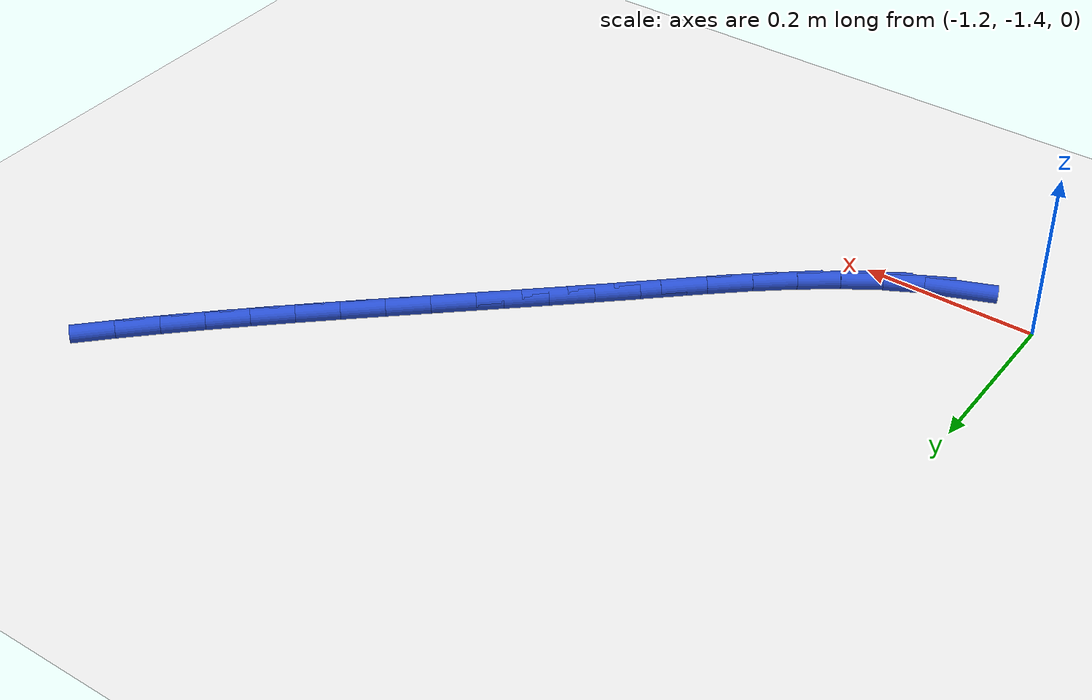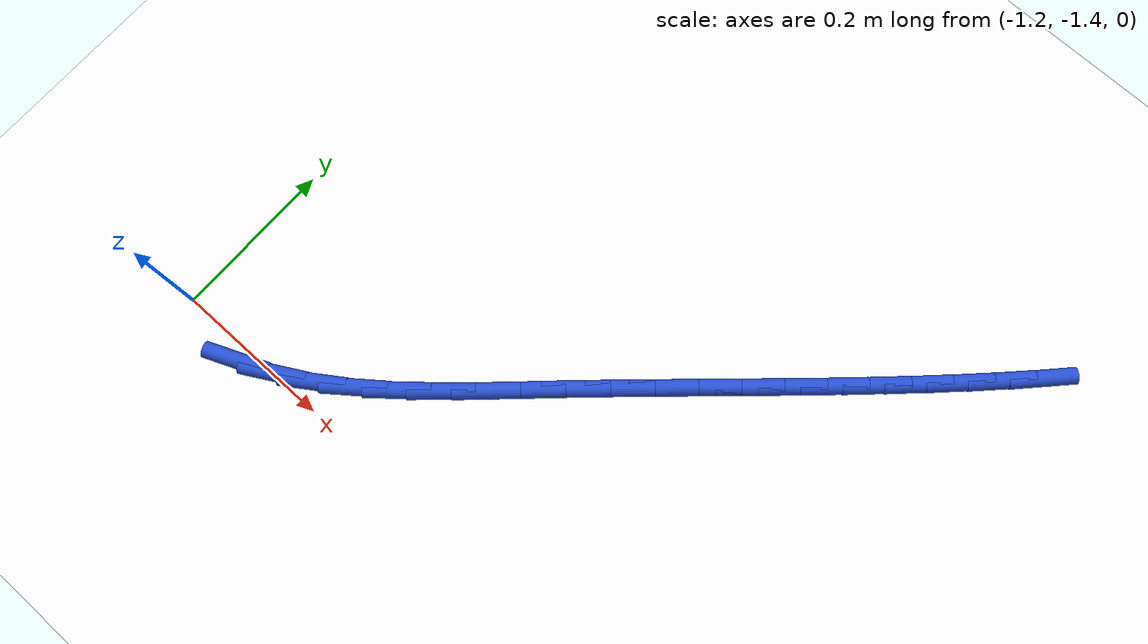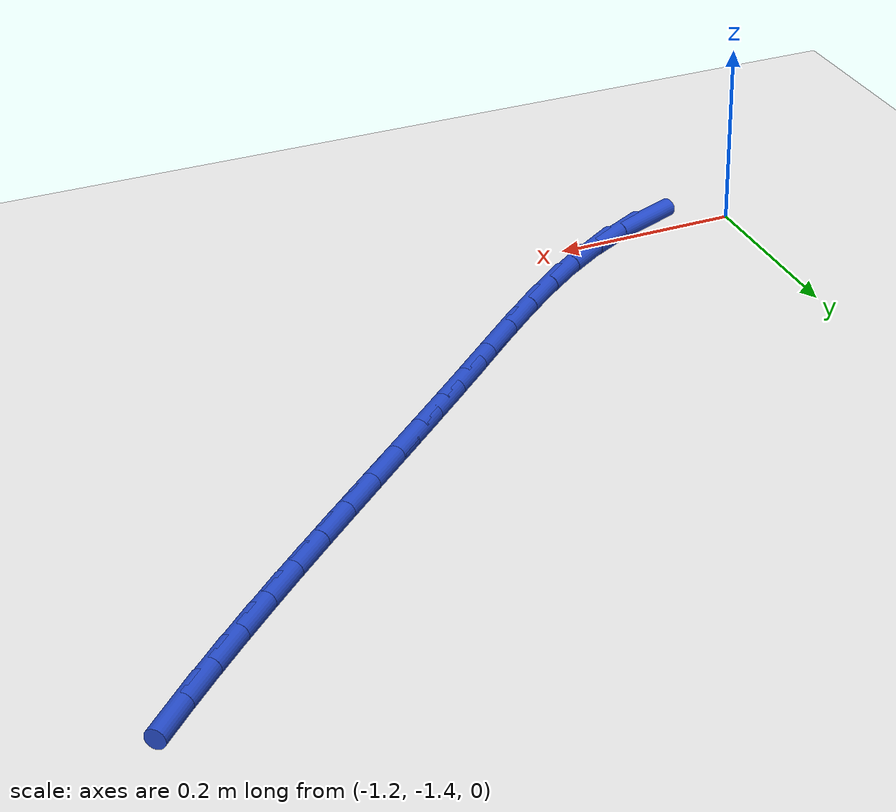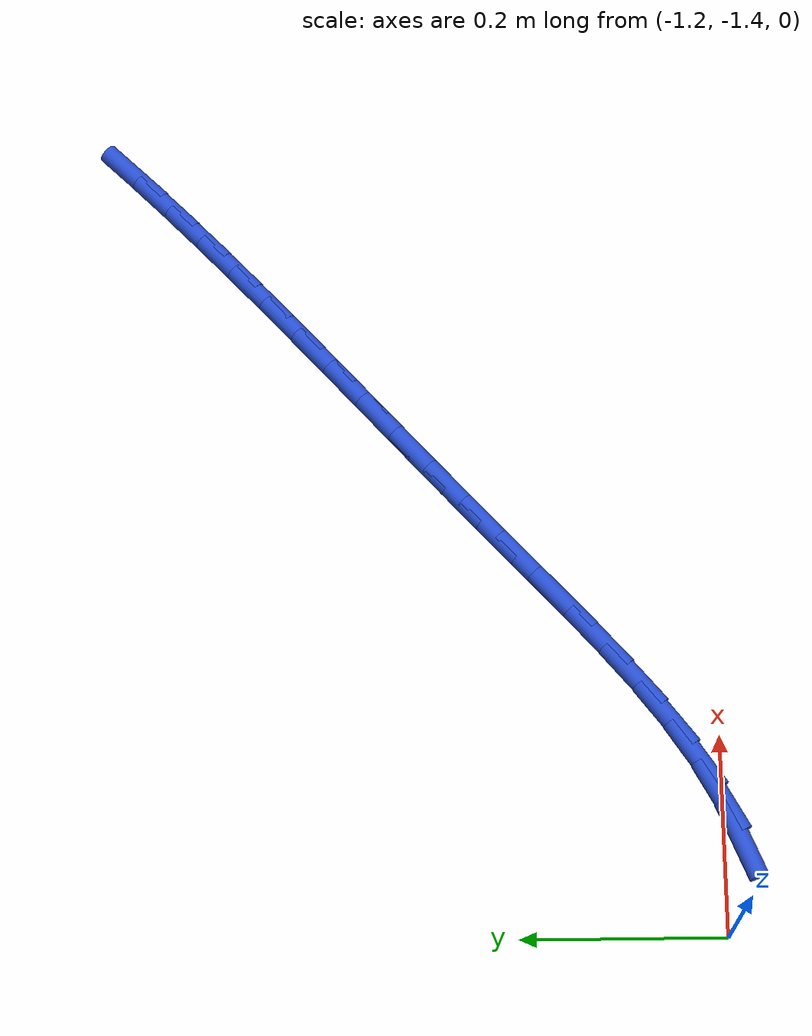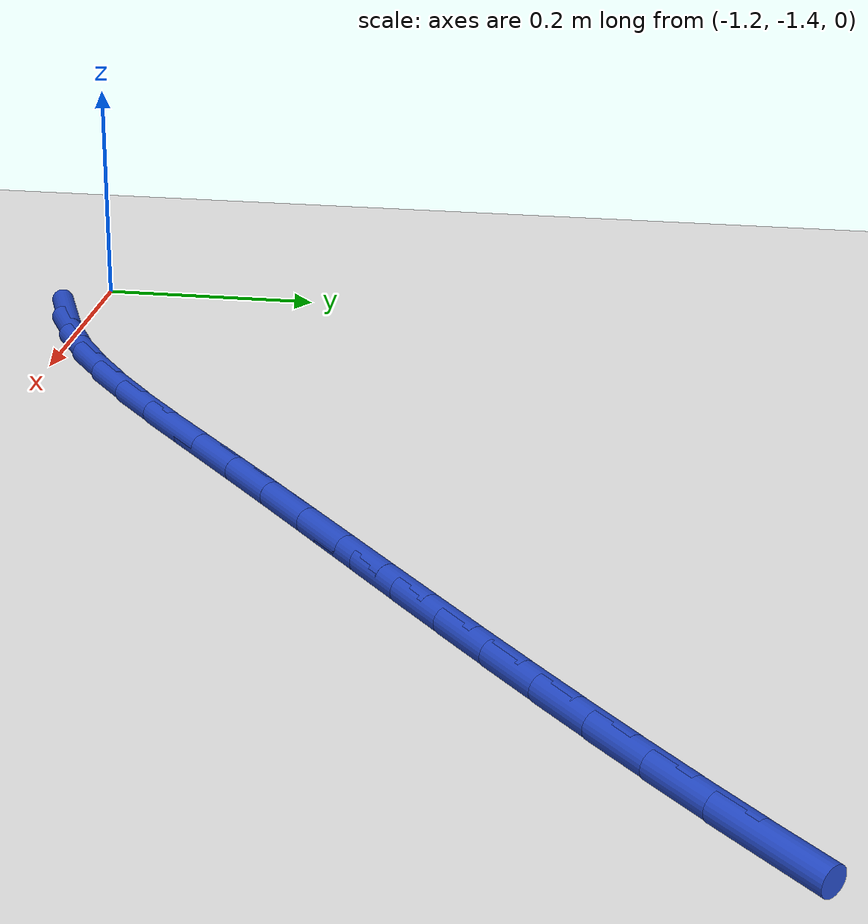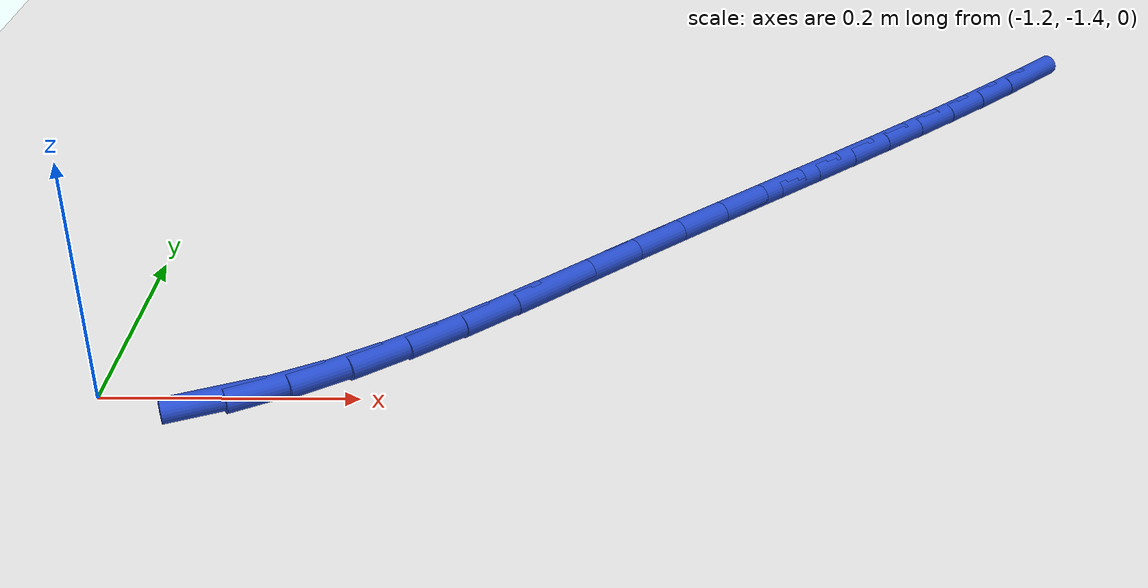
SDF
<sdf version="1.6">
 <world name="default">
  <model name="ground_plane">
   <static>1</static>
   <link name="link">
    <collision name="collision">
     <geometry><plane><normal>0 0 1</normal><size>100 100</size></plane></geometry>
     <surface><friction><ode><mu>100</mu><mu2>50</mu2></ode></friction></surface>
    </collision>
    <visual name="visual">
     <cast_shadows>0</cast_shadows>
     <geometry><plane><normal>0 0 1</normal><size>100 100</size></plane></geometry>
     <material>
      <script><uri>file://media/materials/scripts/gazebo.material</uri><name>Gazebo/WhiteGlow</name></script>
     </material>
    </visual>
   </link>
  </model>
  <model name="line">
   <link name="link_122">
    <pose>-1.1063109473679502 -1.4158477282565332 0.01 0 1.57 0.3921915676091991</pose>
    <collision name="collision">
     <geometry><cylinder><radius>0.01</radius><length>0.08</length></cylinder></geometry>
    </collision>
    <visual name="visual">
     <material>
      <script><name>Gazebo/Blue</name><uri>file://media/materials/scripts/gazebo.material</uri></script>
     </material>
     <geometry><cylinder><radius>0.01</radius><length>0.08</length></cylinder></geometry>
    </visual>
   </link>
   <link name="link_123">
    <pose>-1.0637982477153052 -1.398263663791839 0.01 0 1.57 0.5027078656505121</pose>
    <collision name="collision">
     <geometry><cylinder><radius>0.01</radius><length>0.08</length></cylinder></geometry>
    </collision>
    <visual name="visual">
     <material>
      <script><name>Gazebo/Blue</name><uri>file://media/materials/scripts/gazebo.material</uri></script>
     </material>
     <geometry><cylinder><radius>0.01</radius><length>0.08</length></cylinder></geometry>
    </visual>
   </link>
   <link name="link_124">
    <pose>-1.0223389520727248 -1.3754683593885701 0.01 0 1.57 0.5891364759089782</pose>
    <collision name="collision">
     <geometry><cylinder><radius>0.01</radius><length>0.08</length></cylinder></geometry>
    </collision>
    <visual name="visual">
     <material>
      <script><name>Gazebo/Blue</name><uri>file://media/materials/scripts/gazebo.material</uri></script>
     </material>
     <geometry><cylinder><radius>0.01</radius><length>0.08</length></cylinder></geometry>
    </visual>
   </link>
   <link name="link_125">
    <pose>-0.9818049157917961 -1.3483792310067322 0.01 0 1.57 0.6540916507781833</pose>
    <collision name="collision">
     <geometry><cylinder><radius>0.01</radius><length>0.08</length></cylinder></geometry>
    </collision>
    <visual name="visual">
     <material>
      <script><name>Gazebo/Blue</name><uri>file://media/materials/scripts/gazebo.material</uri></script>
     </material>
     <geometry><cylinder><radius>0.01</radius><length>0.08</length></cylinder></geometry>
    </visual>
   </link>
   <link name="link_126">
    <pose>-0.9420679942241067 -1.3179136946063303 0.01 0 1.57 0.700270162969775</pose>
    <collision name="collision">
     <geometry><cylinder><radius>0.01</radius><length>0.08</length></cylinder></geometry>
    </collision>
    <visual name="visual">
     <material>
      <script><name>Gazebo/Blue</name><uri>file://media/materials/scripts/gazebo.material</uri></script>
     </material>
     <geometry><cylinder><radius>0.01</radius><length>0.08</length></cylinder></geometry>
    </visual>
   </link>
   <link name="link_127">
    <pose>-0.9030000427212455 -1.2849891661473725 0.01 0 1.57 0.7298198692822363</pose>
    <collision name="collision">
     <geometry><cylinder><radius>0.01</radius><length>0.08</length></cylinder></geometry>
    </collision>
    <visual name="visual">
     <material>
      <script><name>Gazebo/Blue</name><uri>file://media/materials/scripts/gazebo.material</uri></script>
     </material>
     <geometry><cylinder><radius>0.01</radius><length>0.08</length></cylinder></geometry>
    </visual>
   </link>
   <link name="link_128">
    <pose>-0.8644729166347993 -1.2505230615898633 0.01 0 1.57 0.7441103555052042</pose>
    <collision name="collision">
     <geometry><cylinder><radius>0.01</radius><length>0.08</length></cylinder></geometry>
    </collision>
    <visual name="visual">
     <material>
      <script><name>Gazebo/Blue</name><uri>file://media/materials/scripts/gazebo.material</uri></script>
     </material>
     <geometry><cylinder><radius>0.01</radius><length>0.08</length></cylinder></geometry>
    </visual>
   </link>
   <link name="link_129">
    <pose>-0.8263584713163569 -1.2154327968938095 0.01 0 1.57 0.7441187762677938</pose>
    <collision name="collision">
     <geometry><cylinder><radius>0.01</radius><length>0.08</length></cylinder></geometry>
    </collision>
    <visual name="visual">
     <material>
      <script><name>Gazebo/Blue</name><uri>file://media/materials/scripts/gazebo.material</uri></script>
     </material>
     <geometry><cylinder><radius>0.01</radius><length>0.08</length></cylinder></geometry>
    </visual>
   </link>
   <link name="link_130">
    <pose>-0.7885326641381387 -1.1806076799127672 0.01 0 1.57 0.7382029792552034</pose>
    <collision name="collision">
     <geometry><cylinder><radius>0.01</radius><length>0.08</length></cylinder></geometry>
    </collision>
    <visual name="visual">
     <material>
      <script><name>Gazebo/Blue</name><uri>file://media/materials/scripts/gazebo.material</uri></script>
     </material>
     <geometry><cylinder><radius>0.01</radius><length>0.08</length></cylinder></geometry>
    </visual>
   </link>
   <link name="link_131">
    <pose>-0.7509479137152673 -1.1464130862857094 0.01 0 1.57 0.7338677734575705</pose>
    <collision name="collision">
     <geometry><cylinder><radius>0.01</radius><length>0.08</length></cylinder></geometry>
    </collision>
    <visual name="visual">
     <material>
      <script><name>Gazebo/Blue</name><uri>file://media/materials/scripts/gazebo.material</uri></script>
     </material>
     <geometry><cylinder><radius>0.01</radius><length>0.08</length></cylinder></geometry>
    </visual>
   </link>
   <link name="link_132">
    <pose>-0.7136243136964039 -1.1127506648163237 0.01 0 1.57 0.7314500195954942</pose>
    <collision name="collision">
     <geometry><cylinder><radius>0.01</radius><length>0.08</length></cylinder></geometry>
    </collision>
    <visual name="visual">
     <material>
      <script><name>Gazebo/Blue</name><uri>file://media/materials/scripts/gazebo.material</uri></script>
     </material>
     <geometry><cylinder><radius>0.01</radius><length>0.08</length></cylinder></geometry>
    </visual>
   </link>
   <link name="link_133">
    <pose>-0.676584294296955 -1.0795060535485435 0.01 0 1.57 0.7310157245922304</pose>
    <collision name="collision">
     <geometry><cylinder><radius>0.01</radius><length>0.08</length></cylinder></geometry>
    </collision>
    <visual name="visual">
     <material>
      <script><name>Gazebo/Blue</name><uri>file://media/materials/scripts/gazebo.material</uri></script>
     </material>
     <geometry><cylinder><radius>0.01</radius><length>0.08</length></cylinder></geometry>
    </visual>
   </link>
   <link name="link_134">
    <pose>-0.639850285732328 -1.0465648905263014 0.01 0 1.57 0.7326187819371703</pose>
    <collision name="collision">
     <geometry><cylinder><radius>0.01</radius><length>0.08</length></cylinder></geometry>
    </collision>
    <visual name="visual">
     <material>
      <script><name>Gazebo/Blue</name><uri>file://media/materials/scripts/gazebo.material</uri></script>
     </material>
     <geometry><cylinder><radius>0.01</radius><length>0.08</length></cylinder></geometry>
    </visual>
   </link>
   <link name="link_135">
    <pose>-0.6034447182179304 -1.0138128137935318 0.01 0 1.57 0.7362998225481592</pose>
    <collision name="collision">
     <geometry><cylinder><radius>0.01</radius><length>0.08</length></cylinder></geometry>
    </collision>
    <visual name="visual">
     <material>
      <script><name>Gazebo/Blue</name><uri>file://media/materials/scripts/gazebo.material</uri></script>
     </material>
     <geometry><cylinder><radius>0.01</radius><length>0.08</length></cylinder></geometry>
    </visual>
   </link>
   <link name="link_136">
    <pose>-0.567390021969169 -0.9811354613941666 0.01 0 1.57 0.7420849952337192</pose>
    <collision name="collision">
     <geometry><cylinder><radius>0.01</radius><length>0.08</length></cylinder></geometry>
    </collision>
    <visual name="visual">
     <material>
      <script><name>Gazebo/Blue</name><uri>file://media/materials/scripts/gazebo.material</uri></script>
     </material>
     <geometry><cylinder><radius>0.01</radius><length>0.08</length></cylinder></geometry>
    </visual>
   </link>
   <link name="link_137">
    <pose>-0.5317086272014522 -0.9484184713721406 0.01 0 1.57 0.7499846877350769</pose>
    <collision name="collision">
     <geometry><cylinder><radius>0.01</radius><length>0.08</length></cylinder></geometry>
    </collision>
    <visual name="visual">
     <material>
      <script><name>Gazebo/Blue</name><uri>file://media/materials/scripts/gazebo.material</uri></script>
     </material>
     <geometry><cylinder><radius>0.01</radius><length>0.08</length></cylinder></geometry>
    </visual>
   </link>
   <link name="link_138">
    <pose>-0.4964229641301868 -0.9155474817713866 0.01 0 1.57 0.7599922207430476</pose>
    <collision name="collision">
     <geometry><cylinder><radius>0.01</radius><length>0.08</length></cylinder></geometry>
    </collision>
    <visual name="visual">
     <material>
      <script><name>Gazebo/Blue</name><uri>file://media/materials/scripts/gazebo.material</uri></script>
     </material>
     <geometry><cylinder><radius>0.01</radius><length>0.08</length></cylinder></geometry>
    </visual>
   </link>
   <link name="link_139">
    <pose>-0.46155546297078004 -0.8824081306358378 0.01 0 1.57 0.772082571623063</pose>
    <collision name="collision">
     <geometry><cylinder><radius>0.01</radius><length>0.08</length></cylinder></geometry>
    </collision>
    <visual name="visual">
     <material>
      <script><name>Gazebo/Blue</name><uri>file://media/materials/scripts/gazebo.material</uri></script>
     </material>
     <geometry><cylinder><radius>0.01</radius><length>0.08</length></cylinder></geometry>
    </visual>
   </link>
   <link name="link_140">
    <pose>-0.42712855393863935 -0.8488860560094276 0.01 0 1.57 0.7862112098012749</pose>
    <collision name="collision">
     <geometry><cylinder><radius>0.01</radius><length>0.08</length></cylinder></geometry>
    </collision>
    <visual name="visual">
     <material>
      <script><name>Gazebo/Blue</name><uri>file://media/materials/scripts/gazebo.material</uri></script>
     </material>
     <geometry><cylinder><radius>0.01</radius><length>0.08</length></cylinder></geometry>
    </visual>
   </link>
   <link name="link_141">
    <pose>-0.3931646672491715 -0.8148668959360886 0.01 0 1.57 0.802313148989615</pose>
    <collision name="collision">
     <geometry><cylinder><radius>0.01</radius><length>0.08</length></cylinder></geometry>
    </collision>
    <visual name="visual">
     <material>
      <script><name>Gazebo/Blue</name><uri>file://media/materials/scripts/gazebo.material</uri></script>
     </material>
     <geometry><cylinder><radius>0.01</radius><length>0.08</length></cylinder></geometry>
    </visual>
   </link>
  </model>
 </world>
</sdf>
